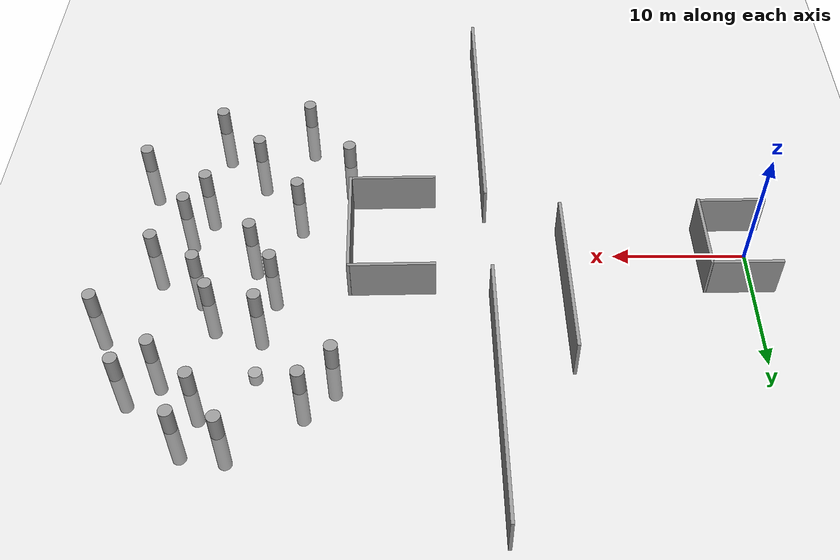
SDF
<sdf version="1.6">
 <world name="default">
  <light name="sun" type="directional">
   <cast_shadows>0</cast_shadows>
   <pose>0 0 10 0 -0 0</pose>
   <diffuse>0.8 0.8 0.8 1</diffuse>
   <specular>0.2 0.2 0.2 1</specular>
   <attenuation>
    <range>1000</range>
    <constant>0.9</constant>
    <linear>0.01</linear>
    <quadratic>0.001</quadratic>
   </attenuation>
   <direction>-0.5 0.1 -0.9</direction>
  </light>
  <model name="ground_plane">
   <static>1</static>
   <link name="link">
    <collision name="collision">
     <geometry><plane><normal>0 0 1</normal><size>200 200</size></plane></geometry>
     <surface><friction><ode><mu>100</mu><mu2>50</mu2></ode></friction></surface>
    </collision>
    <visual name="visual">
     <cast_shadows>0</cast_shadows>
     <geometry><plane><normal>0 0 1</normal><size>200 200</size></plane></geometry>
     <material>
      <script><uri>file://media/materials/scripts/gazebo.material</uri><name>Gazebo/Grey</name></script>
     </material>
    </visual>
    <gravity>0</gravity>
   </link>
  </model>
  <physics name="default_physics" default="0" type="ode">
   <max_step_size>0.001</max_step_size>
   <real_time_factor>1</real_time_factor>
   <real_time_update_rate>1000</real_time_update_rate>
  </physics>
  <scene><ambient>0.4 0.4 0.4 1</ambient><background>0.7 0.7 0.7 1</background><shadows>0</shadows></scene>
  <spherical_coordinates>
   <surface_model>EARTH_WGS84</surface_model>
   <latitude_deg>0</latitude_deg>
   <longitude_deg>0</longitude_deg>
   <elevation>0</elevation>
   <heading_deg>0</heading_deg>
  </spherical_coordinates>
  <gravity>0 0 0</gravity>
  <magnetic_field>6e-06 2.3e-05 -4.2e-05</magnetic_field>
  <atmosphere type="adiabatic"/>
  <model name="unit_box_0_0_clone_0">
   <pose>13.8808 4.23356 1.66667 -0.000226 9e-06 0.034068</pose>
   <link name="link">
    <inertial>
     <mass>1</mass>
     <inertia>
      <ixx>0.166667</ixx>
      <ixy>0</ixy>
      <ixz>0</ixz>
      <iyy>0.166667</iyy>
      <iyz>0</iyz>
      <izz>0.166667</izz>
     </inertia>
    </inertial>
    <collision name="collision">
     <geometry><box><size>0.237691 13.4329 3.33454</size></box></geometry>
     <surface><contact><collide_without_contact>1</collide_without_contact></contact></surface>
    </collision>
    <visual name="visual">
     <geometry><box><size>0.237691 13.4329 3.33454</size></box></geometry>
     <material>
      <script><name>Gazebo/Grey</name><uri>file://media/materials/scripts/gazebo.material</uri></script>
     </material>
    </visual>
    <gravity>0</gravity>
   </link>
  </model>
  <model name="unit_cylinder_0">
   <pose>36.5123 8.86063 -3.49053 0 -0 0</pose>
   <link name="link">
    <inertial>
     <mass>1</mass>
     <inertia><ixx>0.145833</ixx><ixy>0</ixy><ixz>0</ixz><iyy>0.145833</iyy><iyz>0</iyz><izz>0.125</izz></inertia>
    </inertial>
    <collision name="collision">
     <geometry><cylinder><radius>0.5</radius><length>1</length></cylinder></geometry>
     <surface><contact><collide_without_contact>1</collide_without_contact></contact></surface>
    </collision>
    <visual name="visual">
     <geometry><cylinder><radius>0.5</radius><length>1</length></cylinder></geometry>
     <material>
      <script><name>Gazebo/Grey</name><uri>file://media/materials/scripts/gazebo.material</uri></script>
     </material>
    </visual>
    <gravity>0</gravity>
   </link>
  </model>
  <model name="unit_cylinder_0_clone">
   <pose>35.7138 1.81409 -0.973819 0 -0 0.001048</pose>
   <link name="link">
    <inertial>
     <mass>1</mass>
     <inertia><ixx>0.145833</ixx><ixy>0</ixy><ixz>0</ixz><iyy>0.145833</iyy><iyz>0</iyz><izz>0.125</izz></inertia>
    </inertial>
    <collision name="collision">
     <geometry><cylinder><radius>0.5</radius><length>6.03342</length></cylinder></geometry>
     <surface><contact><collide_without_contact>1</collide_without_contact></contact></surface>
    </collision>
    <visual name="visual">
     <geometry><cylinder><radius>0.5</radius><length>6.03342</length></cylinder></geometry>
     <material>
      <script><name>Gazebo/Grey</name><uri>file://media/materials/scripts/gazebo.material</uri></script>
     </material>
    </visual>
    <gravity>0</gravity>
   </link>
  </model>
  <model name="unit_cylinder_0_clone_0">
   <pose>34.333 -5.78751 -0.973819 0 -0 0.00102</pose>
   <link name="link">
    <inertial>
     <mass>1</mass>
     <inertia><ixx>0.145833</ixx><ixy>0</ixy><ixz>0</ixz><iyy>0.145833</iyy><iyz>0</iyz><izz>0.125</izz></inertia>
    </inertial>
    <collision name="collision">
     <geometry><cylinder><radius>0.5</radius><length>6.03342</length></cylinder></geometry>
     <surface><contact><collide_without_contact>1</collide_without_contact></contact></surface>
    </collision>
    <visual name="visual">
     <geometry><cylinder><radius>0.5</radius><length>6.03342</length></cylinder></geometry>
     <material>
      <script><name>Gazebo/Grey</name><uri>file://media/materials/scripts/gazebo.material</uri></script>
     </material>
    </visual>
    <gravity>0</gravity>
   </link>
  </model>
  <model name="unit_cylinder_0_clone_1">
   <pose>36.4256 5.60163 -0.973819 0 -0 0.001071</pose>
   <link name="link">
    <inertial>
     <mass>1</mass>
     <inertia><ixx>0.145833</ixx><ixy>0</ixy><ixz>0</ixz><iyy>0.145833</iyy><iyz>0</iyz><izz>0.125</izz></inertia>
    </inertial>
    <collision name="collision">
     <geometry><cylinder><radius>0.5</radius><length>6.03342</length></cylinder></geometry>
     <surface><contact><collide_without_contact>1</collide_without_contact></contact></surface>
    </collision>
    <visual name="visual">
     <geometry><cylinder><radius>0.5</radius><length>6.03342</length></cylinder></geometry>
     <material>
      <script><name>Gazebo/Grey</name><uri>file://media/materials/scripts/gazebo.material</uri></script>
     </material>
    </visual>
    <gravity>0</gravity>
   </link>
  </model>
  <model name="unit_cylinder_0_clone_2">
   <pose>40.095 4.60307 -0.973819 0 -0 0.00102</pose>
   <link name="link">
    <inertial>
     <mass>1</mass>
     <inertia><ixx>0.145833</ixx><ixy>0</ixy><ixz>0</ixz><iyy>0.145833</iyy><iyz>0</iyz><izz>0.125</izz></inertia>
    </inertial>
    <collision name="collision">
     <geometry><cylinder><radius>0.5</radius><length>6.03342</length></cylinder></geometry>
     <surface><contact><collide_without_contact>1</collide_without_contact></contact></surface>
    </collision>
    <visual name="visual">
     <geometry><cylinder><radius>0.5</radius><length>6.03342</length></cylinder></geometry>
     <material>
      <script><name>Gazebo/Grey</name><uri>file://media/materials/scripts/gazebo.material</uri></script>
     </material>
    </visual>
    <gravity>0</gravity>
   </link>
  </model>
  <model name="unit_cylinder_0_clone_3">
   <pose>43.012 -4.07604 -0.973819 0 -0 0.001061</pose>
   <link name="link">
    <inertial>
     <mass>1</mass>
     <inertia><ixx>0.145833</ixx><ixy>0</ixy><ixz>0</ixz><iyy>0.145833</iyy><iyz>0</iyz><izz>0.125</izz></inertia>
    </inertial>
    <collision name="collision">
     <geometry><cylinder><radius>0.5</radius><length>6.03342</length></cylinder></geometry>
     <surface><contact><collide_without_contact>1</collide_without_contact></contact></surface>
    </collision>
    <visual name="visual">
     <geometry><cylinder><radius>0.5</radius><length>6.03342</length></cylinder></geometry>
     <material>
      <script><name>Gazebo/Grey</name><uri>file://media/materials/scripts/gazebo.material</uri></script>
     </material>
    </visual>
    <gravity>0</gravity>
   </link>
  </model>
  <model name="unit_cylinder_0_clone_4">
   <pose>44.8772 -0.138691 -0.973809 0 -0 0.001001</pose>
   <link name="link">
    <inertial>
     <mass>1</mass>
     <inertia><ixx>0.145833</ixx><ixy>0</ixy><ixz>0</ixz><iyy>0.145833</iyy><iyz>0</iyz><izz>0.125</izz></inertia>
    </inertial>
    <collision name="collision">
     <geometry><cylinder><radius>0.5</radius><length>6.03342</length></cylinder></geometry>
     <surface><contact><collide_without_contact>1</collide_without_contact></contact></surface>
    </collision>
    <visual name="visual">
     <geometry><cylinder><radius>0.5</radius><length>6.03342</length></cylinder></geometry>
     <material>
      <script><name>Gazebo/Grey</name><uri>file://media/materials/scripts/gazebo.material</uri></script>
     </material>
    </visual>
    <gravity>0</gravity>
   </link>
  </model>
  <model name="unit_cylinder_0_clone_5">
   <pose>41.4105 1.88991 -0.973819 0 -0 0.000951</pose>
   <link name="link">
    <inertial>
     <mass>1</mass>
     <inertia><ixx>0.145833</ixx><ixy>0</ixy><ixz>0</ixz><iyy>0.145833</iyy><iyz>0</iyz><izz>0.125</izz></inertia>
    </inertial>
    <collision name="collision">
     <geometry><cylinder><radius>0.5</radius><length>6.03342</length></cylinder></geometry>
     <surface><contact><collide_without_contact>1</collide_without_contact></contact></surface>
    </collision>
    <visual name="visual">
     <geometry><cylinder><radius>0.5</radius><length>6.03342</length></cylinder></geometry>
     <material>
      <script><name>Gazebo/Grey</name><uri>file://media/materials/scripts/gazebo.material</uri></script>
     </material>
    </visual>
    <gravity>0</gravity>
   </link>
  </model>
  <model name="unit_cylinder_0_clone_6">
   <pose>41.6643 -6.5691 -0.973819 0 -0 0.00102</pose>
   <link name="link">
    <inertial>
     <mass>1</mass>
     <inertia><ixx>0.145833</ixx><ixy>0</ixy><ixz>0</ixz><iyy>0.145833</iyy><iyz>0</iyz><izz>0.125</izz></inertia>
    </inertial>
    <collision name="collision">
     <geometry><cylinder><radius>0.5</radius><length>6.03342</length></cylinder></geometry>
     <surface><contact><collide_without_contact>1</collide_without_contact></contact></surface>
    </collision>
    <visual name="visual">
     <geometry><cylinder><radius>0.5</radius><length>6.03342</length></cylinder></geometry>
     <material>
      <script><name>Gazebo/Grey</name><uri>file://media/materials/scripts/gazebo.material</uri></script>
     </material>
    </visual>
    <gravity>0</gravity>
   </link>
  </model>
  <model name="unit_cylinder_0_clone_7">
   <pose>37.572 -1.32122 -0.973819 0 -0 0.001017</pose>
   <link name="link">
    <inertial>
     <mass>1</mass>
     <inertia><ixx>0.145833</ixx><ixy>0</ixy><ixz>0</ixz><iyy>0.145833</iyy><iyz>0</iyz><izz>0.125</izz></inertia>
    </inertial>
    <collision name="collision">
     <geometry><cylinder><radius>0.5</radius><length>6.03342</length></cylinder></geometry>
     <surface><contact><collide_without_contact>1</collide_without_contact></contact></surface>
    </collision>
    <visual name="visual">
     <geometry><cylinder><radius>0.5</radius><length>6.03342</length></cylinder></geometry>
     <material>
      <script><name>Gazebo/Grey</name><uri>file://media/materials/scripts/gazebo.material</uri></script>
     </material>
    </visual>
    <gravity>0</gravity>
   </link>
  </model>
  <model name="unit_cylinder_0_clone_8">
   <pose>45.5641 11.3365 -0.973819 0 -0 0.001111</pose>
   <link name="link">
    <inertial>
     <mass>1</mass>
     <inertia><ixx>0.145833</ixx><ixy>0</ixy><ixz>0</ixz><iyy>0.145833</iyy><iyz>0</iyz><izz>0.125</izz></inertia>
    </inertial>
    <collision name="collision">
     <geometry><cylinder><radius>0.5</radius><length>6.03342</length></cylinder></geometry>
     <surface><contact><collide_without_contact>1</collide_without_contact></contact></surface>
    </collision>
    <visual name="visual">
     <geometry><cylinder><radius>0.5</radius><length>6.03342</length></cylinder></geometry>
     <material>
      <script><name>Gazebo/Grey</name><uri>file://media/materials/scripts/gazebo.material</uri></script>
     </material>
    </visual>
    <gravity>0</gravity>
   </link>
  </model>
  <model name="unit_cylinder_0_clone_9">
   <pose>43.3588 9.77114 -0.973809 0 -0 0.001025</pose>
   <link name="link">
    <inertial>
     <mass>1</mass>
     <inertia><ixx>0.145833</ixx><ixy>0</ixy><ixz>0</ixz><iyy>0.145833</iyy><iyz>0</iyz><izz>0.125</izz></inertia>
    </inertial>
    <collision name="collision">
     <geometry><cylinder><radius>0.5</radius><length>6.03342</length></cylinder></geometry>
     <surface><contact><collide_without_contact>1</collide_without_contact></contact></surface>
    </collision>
    <visual name="visual">
     <geometry><cylinder><radius>0.5</radius><length>6.03342</length></cylinder></geometry>
     <material>
      <script><name>Gazebo/Grey</name><uri>file://media/materials/scripts/gazebo.material</uri></script>
     </material>
    </visual>
    <gravity>0</gravity>
   </link>
  </model>
  <model name="unit_cylinder_0_clone_10">
   <pose>48.21 5.73589 -0.973819 0 -0 0.000963</pose>
   <link name="link">
    <inertial>
     <mass>1</mass>
     <inertia><ixx>0.145833</ixx><ixy>0</ixy><ixz>0</ixz><iyy>0.145833</iyy><iyz>0</iyz><izz>0.125</izz></inertia>
    </inertial>
    <collision name="collision">
     <geometry><cylinder><radius>0.5</radius><length>6.03342</length></cylinder></geometry>
     <surface><contact><collide_without_contact>1</collide_without_contact></contact></surface>
    </collision>
    <visual name="visual">
     <geometry><cylinder><radius>0.5</radius><length>6.03342</length></cylinder></geometry>
     <material>
      <script><name>Gazebo/Grey</name><uri>file://media/materials/scripts/gazebo.material</uri></script>
     </material>
    </visual>
    <gravity>0</gravity>
   </link>
  </model>
  <model name="unit_cylinder_0_clone_11">
   <pose>37.8194 -10.6225 -0.973819 0 -0 0.000949</pose>
   <link name="link">
    <inertial>
     <mass>1</mass>
     <inertia><ixx>0.145833</ixx><ixy>0</ixy><ixz>0</ixz><iyy>0.145833</iyy><iyz>0</iyz><izz>0.125</izz></inertia>
    </inertial>
    <collision name="collision">
     <geometry><cylinder><radius>0.5</radius><length>6.03342</length></cylinder></geometry>
     <surface><contact><collide_without_contact>1</collide_without_contact></contact></surface>
    </collision>
    <visual name="visual">
     <geometry><cylinder><radius>0.5</radius><length>6.03342</length></cylinder></geometry>
     <material>
      <script><name>Gazebo/Grey</name><uri>file://media/materials/scripts/gazebo.material</uri></script>
     </material>
    </visual>
    <gravity>0</gravity>
   </link>
  </model>
  <model name="unit_cylinder_0_clone_12">
   <pose>32.6996 12.3147 -0.973819 0 -0 0.000949</pose>
   <link name="link">
    <inertial>
     <mass>1</mass>
     <inertia><ixx>0.145833</ixx><ixy>0</ixy><ixz>0</ixz><iyy>0.145833</iyy><iyz>0</iyz><izz>0.125</izz></inertia>
    </inertial>
    <collision name="collision">
     <geometry><cylinder><radius>0.5</radius><length>6.03342</length></cylinder></geometry>
     <surface><contact><collide_without_contact>1</collide_without_contact></contact></surface>
    </collision>
    <visual name="visual">
     <geometry><cylinder><radius>0.5</radius><length>6.03342</length></cylinder></geometry>
     <material>
      <script><name>Gazebo/Grey</name><uri>file://media/materials/scripts/gazebo.material</uri></script>
     </material>
    </visual>
    <gravity>0</gravity>
   </link>
  </model>
  <model name="unit_cylinder_0_clone_13">
   <pose>30.5886 10.1395 -0.973819 0 -0 0.000936</pose>
   <link name="link">
    <inertial>
     <mass>1</mass>
     <inertia><ixx>0.145833</ixx><ixy>0</ixy><ixz>0</ixz><iyy>0.145833</iyy><iyz>0</iyz><izz>0.125</izz></inertia>
    </inertial>
    <collision name="collision">
     <geometry><cylinder><radius>0.5</radius><length>6.03342</length></cylinder></geometry>
     <surface><contact><collide_without_contact>1</collide_without_contact></contact></surface>
    </collision>
    <visual name="visual">
     <geometry><cylinder><radius>0.5</radius><length>6.03342</length></cylinder></geometry>
     <material>
      <script><name>Gazebo/Grey</name><uri>file://media/materials/scripts/gazebo.material</uri></script>
     </material>
    </visual>
    <gravity>0</gravity>
   </link>
  </model>
  <model name="unit_cylinder_0_clone_14">
   <pose>30.4731 -9.99792 -0.973809 0 -0 0.001073</pose>
   <link name="link">
    <inertial>
     <mass>1</mass>
     <inertia><ixx>0.145833</ixx><ixy>0</ixy><ixz>0</ixz><iyy>0.145833</iyy><iyz>0</iyz><izz>0.125</izz></inertia>
    </inertial>
    <collision name="collision">
     <geometry><cylinder><radius>0.5</radius><length>6.03342</length></cylinder></geometry>
     <surface><contact><collide_without_contact>1</collide_without_contact></contact></surface>
    </collision>
    <visual name="visual">
     <geometry><cylinder><radius>0.5</radius><length>6.03342</length></cylinder></geometry>
     <material>
      <script><name>Gazebo/Grey</name><uri>file://media/materials/scripts/gazebo.material</uri></script>
     </material>
    </visual>
    <gravity>0</gravity>
   </link>
  </model>
  <model name="unit_cylinder_0_clone_15">
   <pose>46.7351 -9.39948 -0.973809 0 -0 0.001025</pose>
   <link name="link">
    <inertial>
     <mass>1</mass>
     <inertia><ixx>0.145833</ixx><ixy>0</ixy><ixz>0</ixz><iyy>0.145833</iyy><iyz>0</iyz><izz>0.125</izz></inertia>
    </inertial>
    <collision name="collision">
     <geometry><cylinder><radius>0.5</radius><length>6.03342</length></cylinder></geometry>
     <surface><contact><collide_without_contact>1</collide_without_contact></contact></surface>
    </collision>
    <visual name="visual">
     <geometry><cylinder><radius>0.5</radius><length>6.03342</length></cylinder></geometry>
     <material>
      <script><name>Gazebo/Grey</name><uri>file://media/materials/scripts/gazebo.material</uri></script>
     </material>
    </visual>
    <gravity>0</gravity>
   </link>
  </model>
  <model name="unit_cylinder_0_clone_16">
   <pose>37.8551 15.9705 -0.973819 0 -0 0.000998</pose>
   <link name="link">
    <inertial>
     <mass>1</mass>
     <inertia><ixx>0.145833</ixx><ixy>0</ixy><ixz>0</ixz><iyy>0.145833</iyy><iyz>0</iyz><izz>0.125</izz></inertia>
    </inertial>
    <collision name="collision">
     <geometry><cylinder><radius>0.5</radius><length>6.03342</length></cylinder></geometry>
     <surface><contact><collide_without_contact>1</collide_without_contact></contact></surface>
    </collision>
    <visual name="visual">
     <geometry><cylinder><radius>0.5</radius><length>6.03342</length></cylinder></geometry>
     <material>
      <script><name>Gazebo/Grey</name><uri>file://media/materials/scripts/gazebo.material</uri></script>
     </material>
    </visual>
    <gravity>0</gravity>
   </link>
  </model>
  <model name="unit_cylinder_0_clone_17">
   <pose>41.0774 15.5736 -0.973819 0 -0 0.001062</pose>
   <link name="link">
    <inertial>
     <mass>1</mass>
     <inertia><ixx>0.145833</ixx><ixy>0</ixy><ixz>0</ixz><iyy>0.145833</iyy><iyz>0</iyz><izz>0.125</izz></inertia>
    </inertial>
    <collision name="collision">
     <geometry><cylinder><radius>0.5</radius><length>6.03342</length></cylinder></geometry>
     <surface><contact><collide_without_contact>1</collide_without_contact></contact></surface>
    </collision>
    <visual name="visual">
     <geometry><cylinder><radius>0.5</radius><length>6.03342</length></cylinder></geometry>
     <material>
      <script><name>Gazebo/Grey</name><uri>file://media/materials/scripts/gazebo.material</uri></script>
     </material>
    </visual>
    <gravity>0</gravity>
   </link>
  </model>
  <model name="unit_cylinder_0_clone_18">
   <pose>34.0571 -14.8992 -0.973809 0 -0 0.001025</pose>
   <link name="link">
    <inertial>
     <mass>1</mass>
     <inertia><ixx>0.145833</ixx><ixy>0</ixy><ixz>0</ixz><iyy>0.145833</iyy><iyz>0</iyz><izz>0.125</izz></inertia>
    </inertial>
    <collision name="collision">
     <geometry><cylinder><radius>0.5</radius><length>6.03342</length></cylinder></geometry>
     <surface><contact><collide_without_contact>1</collide_without_contact></contact></surface>
    </collision>
    <visual name="visual">
     <geometry><cylinder><radius>0.5</radius><length>6.03342</length></cylinder></geometry>
     <material>
      <script><name>Gazebo/Grey</name><uri>file://media/materials/scripts/gazebo.material</uri></script>
     </material>
    </visual>
    <gravity>0</gravity>
   </link>
  </model>
  <model name="unit_cylinder_0_clone_19">
   <pose>41.1999 -13.9942 -0.973819 0 -0 0.00106</pose>
   <link name="link">
    <inertial>
     <mass>1</mass>
     <inertia><ixx>0.145833</ixx><ixy>0</ixy><ixz>0</ixz><iyy>0.145833</iyy><iyz>0</iyz><izz>0.125</izz></inertia>
    </inertial>
    <collision name="collision">
     <geometry><cylinder><radius>0.5</radius><length>6.03342</length></cylinder></geometry>
     <surface><contact><collide_without_contact>1</collide_without_contact></contact></surface>
    </collision>
    <visual name="visual">
     <geometry><cylinder><radius>0.5</radius><length>6.03342</length></cylinder></geometry>
     <material>
      <script><name>Gazebo/Grey</name><uri>file://media/materials/scripts/gazebo.material</uri></script>
     </material>
    </visual>
    <gravity>0</gravity>
   </link>
  </model>
  <model name="unit_cylinder_0_clone_20">
   <pose>40.2463 12.4856 -0.973819 0 -0 0.000949</pose>
   <link name="link">
    <inertial>
     <mass>1</mass>
     <inertia><ixx>0.145833</ixx><ixy>0</ixy><ixz>0</ixz><iyy>0.145833</iyy><iyz>0</iyz><izz>0.125</izz></inertia>
    </inertial>
    <collision name="collision">
     <geometry><cylinder><radius>0.5</radius><length>6.03342</length></cylinder></geometry>
     <surface><contact><collide_without_contact>1</collide_without_contact></contact></surface>
    </collision>
    <visual name="visual">
     <geometry><cylinder><radius>0.5</radius><length>6.03342</length></cylinder></geometry>
     <material>
      <script><name>Gazebo/Grey</name><uri>file://media/materials/scripts/gazebo.material</uri></script>
     </material>
    </visual>
    <gravity>0</gravity>
   </link>
  </model>
  <model name="unit_box_0_0_clone_0_clone">
   <pose>18.9776 14.0221 1.66667 -0.000226 9e-06 0.034061</pose>
   <link name="link">
    <inertial>
     <mass>1</mass>
     <inertia>
      <ixx>0.166667</ixx>
      <ixy>0</ixy>
      <ixz>0</ixz>
      <iyy>0.166667</iyy>
      <iyz>0</iyz>
      <izz>0.166667</izz>
     </inertia>
    </inertial>
    <collision name="collision">
     <geometry><box><size>0.237691 20.4927 3.33454</size></box></geometry>
     <surface><contact><collide_without_contact>1</collide_without_contact></contact></surface>
    </collision>
    <visual name="visual">
     <geometry><box><size>0.237691 20.4927 3.33454</size></box></geometry>
     <material>
      <script><name>Gazebo/Grey</name><uri>file://media/materials/scripts/gazebo.material</uri></script>
     </material>
    </visual>
    <gravity>0</gravity>
   </link>
  </model>
  <model name="unit_box_0_0_clone_0_clone_clone">
   <pose>20.034 -13.669 1.66667 -0.000226 9e-06 0.034061</pose>
   <link name="link">
    <inertial>
     <mass>1</mass>
     <inertia>
      <ixx>0.166667</ixx>
      <ixy>0</ixy>
      <ixz>0</ixz>
      <iyy>0.166667</iyy>
      <iyz>0</iyz>
      <izz>0.166667</izz>
     </inertia>
    </inertial>
    <collision name="collision">
     <geometry><box><size>0.237691 20.4927 3.33454</size></box></geometry>
     <surface><contact><collide_without_contact>1</collide_without_contact></contact></surface>
    </collision>
    <visual name="visual">
     <geometry><box><size>0.237691 20.4927 3.33454</size></box></geometry>
     <material>
      <script><name>Gazebo/Grey</name><uri>file://media/materials/scripts/gazebo.material</uri></script>
     </material>
    </visual>
    <gravity>0</gravity>
   </link>
  </model>
  <model name="unit_box_0_0_clone_0_clone_clone_0">
   <pose>26.5741 3.7947 1.66667 8e-06 0.000226 1.60099</pose>
   <link name="link">
    <inertial>
     <mass>1</mass>
     <inertia>
      <ixx>0.166667</ixx>
      <ixy>0</ixy>
      <ixz>0</ixz>
      <iyy>0.166667</iyy>
      <iyz>0</iyz>
      <izz>0.166667</izz>
     </inertia>
    </inertial>
    <collision name="collision">
     <geometry><box><size>0.237691 6.40291 3.33454</size></box></geometry>
     <surface><contact><collide_without_contact>1</collide_without_contact></contact></surface>
    </collision>
    <visual name="visual">
     <geometry><box><size>0.237691 6.40291 3.33454</size></box></geometry>
     <material>
      <script><name>Gazebo/Grey</name><uri>file://media/materials/scripts/gazebo.material</uri></script>
     </material>
    </visual>
    <gravity>0</gravity>
   </link>
  </model>
  <model name="unit_box_0_0_clone_0_clone_clone_0_clone">
   <pose>29.8508 -0.508676 1.66667 -0.000226 9e-06 0.034061</pose>
   <link name="link">
    <inertial>
     <mass>1</mass>
     <inertia>
      <ixx>0.166667</ixx>
      <ixy>0</ixy>
      <ixz>0</ixz>
      <iyy>0.166667</iyy>
      <iyz>0</iyz>
      <izz>0.166667</izz>
     </inertia>
    </inertial>
    <collision name="collision">
     <geometry><box><size>0.237691 9.07344 3.33454</size></box></geometry>
     <surface><contact><collide_without_contact>1</collide_without_contact></contact></surface>
    </collision>
    <visual name="visual">
     <geometry><box><size>0.237691 9.07344 3.33454</size></box></geometry>
     <material>
      <script><name>Gazebo/Grey</name><uri>file://media/materials/scripts/gazebo.material</uri></script>
     </material>
    </visual>
    <gravity>0</gravity>
   </link>
  </model>
  <model name="unit_box_0_0_clone_0_clone_clone_0_clone_0">
   <pose>26.6881 -5.02762 1.66667 8e-06 0.000226 1.60099</pose>
   <link name="link">
    <inertial>
     <mass>1</mass>
     <inertia>
      <ixx>0.166667</ixx>
      <ixy>0</ixy>
      <ixz>0</ixz>
      <iyy>0.166667</iyy>
      <iyz>0</iyz>
      <izz>0.166667</izz>
     </inertia>
    </inertial>
    <collision name="collision">
     <geometry><box><size>0.237691 6.4029 3.33454</size></box></geometry>
     <surface><contact><collide_without_contact>1</collide_without_contact></contact></surface>
    </collision>
    <visual name="visual">
     <geometry><box><size>0.237691 6.4029 3.33454</size></box></geometry>
     <material>
      <script><name>Gazebo/Grey</name><uri>file://media/materials/scripts/gazebo.material</uri></script>
     </material>
    </visual>
    <gravity>0</gravity>
   </link>
  </model>
  <model name="unit_box_0_0_clone_0_clone_clone_0_clone_clone">
   <pose>3.56833 0.275438 1.66667 -0.000226 6e-06 0.022264</pose>
   <link name="link">
    <inertial>
     <mass>1</mass>
     <inertia>
      <ixx>0.166667</ixx>
      <ixy>0</ixy>
      <ixz>0</ixz>
      <iyy>0.166667</iyy>
      <iyz>0</iyz>
      <izz>0.166667</izz>
     </inertia>
    </inertial>
    <collision name="collision">
     <geometry><box><size>0.237691 6.38948 3.33454</size></box></geometry>
     <surface><contact><collide_without_contact>1</collide_without_contact></contact></surface>
    </collision>
    <visual name="visual">
     <geometry><box><size>0.237691 6.38948 3.33454</size></box></geometry>
     <material>
      <script><name>Gazebo/Grey</name><uri>file://media/materials/scripts/gazebo.material</uri></script>
     </material>
    </visual>
    <gravity>0</gravity>
   </link>
  </model>
  <model name="unit_box_0_0_clone_0_clone_clone_0_clone_1">
   <pose>0.87092 3.30763 1.66667 8e-06 0.000226 1.60099</pose>
   <link name="link">
    <inertial>
     <mass>1</mass>
     <inertia>
      <ixx>0.166667</ixx>
      <ixy>0</ixy>
      <ixz>0</ixz>
      <iyy>0.166667</iyy>
      <iyz>0</iyz>
      <izz>0.166667</izz>
     </inertia>
    </inertial>
    <collision name="collision">
     <geometry><box><size>0.237691 5.13397 3.33454</size></box></geometry>
     <surface><contact><collide_without_contact>1</collide_without_contact></contact></surface>
    </collision>
    <visual name="visual">
     <geometry><box><size>0.237691 5.13397 3.33454</size></box></geometry>
     <material>
      <script><name>Gazebo/Grey</name><uri>file://media/materials/scripts/gazebo.material</uri></script>
     </material>
    </visual>
    <gravity>0</gravity>
   </link>
  </model>
  <model name="unit_box_0_0_clone_0_clone_clone_0_clone_1_clone">
   <pose>1.12991 -2.86226 1.66667 8e-06 0.000226 1.60099</pose>
   <link name="link">
    <inertial>
     <mass>1</mass>
     <inertia>
      <ixx>0.166667</ixx>
      <ixy>0</ixy>
      <ixz>0</ixz>
      <iyy>0.166667</iyy>
      <iyz>0</iyz>
      <izz>0.166667</izz>
     </inertia>
    </inertial>
    <collision name="collision">
     <geometry><box><size>0.237691 5.13398 3.33454</size></box></geometry>
     <surface><contact><collide_without_contact>1</collide_without_contact></contact></surface>
    </collision>
    <visual name="visual">
     <geometry><box><size>0.237691 5.13398 3.33454</size></box></geometry>
     <material>
      <script><name>Gazebo/Grey</name><uri>file://media/materials/scripts/gazebo.material</uri></script>
     </material>
    </visual>
    <gravity>0</gravity>
   </link>
  </model>
 </world>
</sdf>
